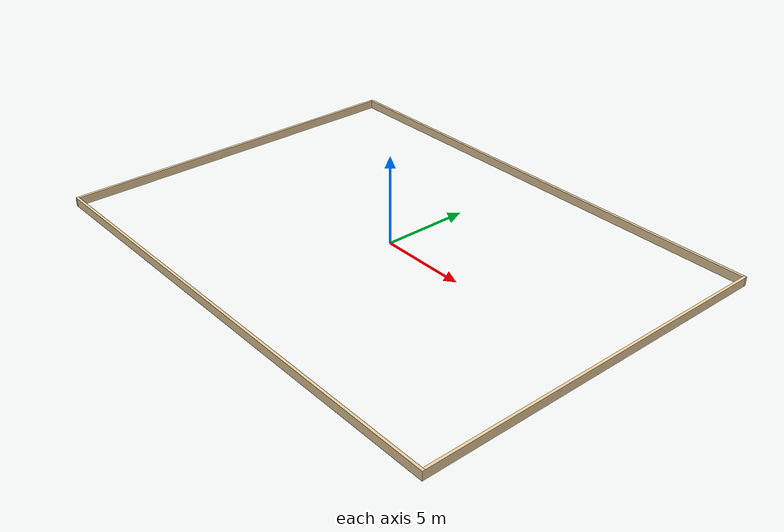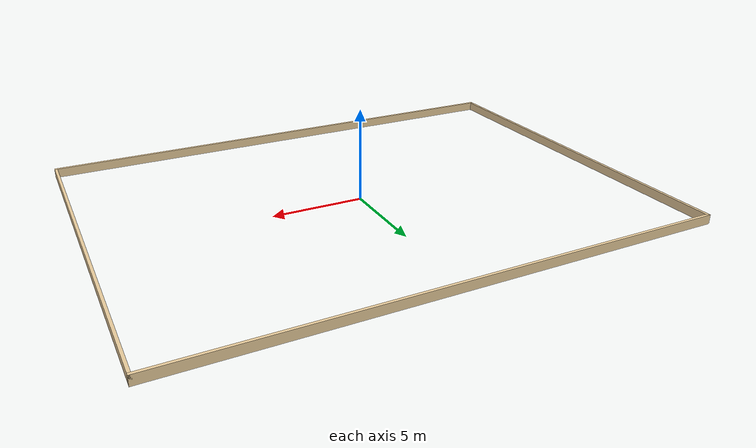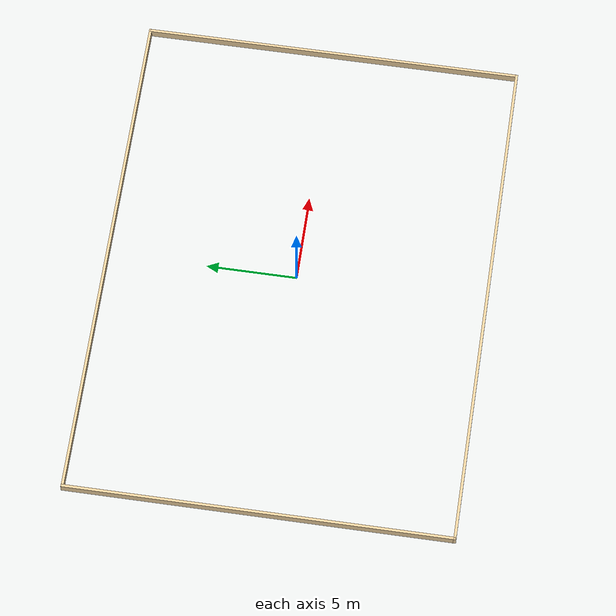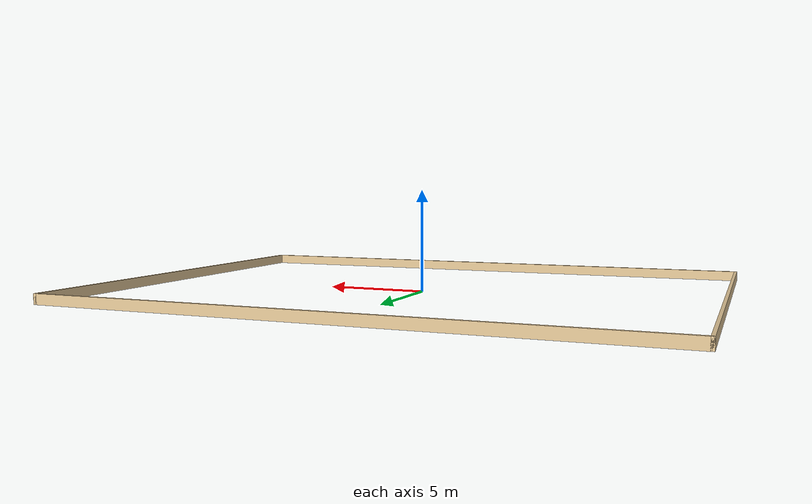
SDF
<?xml version='1.0'?>
<sdf version='1.6'>
  <model name='indoor_boundary'>
    <pose frame=''>0 0 0 0 -0 0</pose>
    <link name='Wall_10'>
      <collision name='Wall_10_Collision'>
        <geometry>
          <box>
            <size>28.65 0.15 0.5</size>
          </box>
        </geometry>
        <pose frame=''>0 0 0.25 0 -0 0</pose>
      </collision>
      <visual name='Wall_10_Visual'>
        <pose frame=''>0 0 0.25 0 -0 0</pose>
        <geometry>
          <box>
            <size>28.65 0.15 0.5</size>
          </box>
        </geometry>
        <material>
          <script>
            <uri>file://media/materials/scripts/gazebo.material</uri>
            <name>Gazebo/Grey</name>
          </script>
          <ambient>0.921569 0.807843 0.615686 1</ambient>
        </material>
        <meta>
          <layer>0</layer>
        </meta>
      </visual>
      <pose frame=''>0 -10.5 0 0 -0 3.14159</pose>
    </link>
    <link name='Wall_11'>
      <collision name='Wall_11_Collision'>
        <geometry>
          <box>
            <size>21.15 0.15 0.5</size>
          </box>
        </geometry>
        <pose frame=''>0 0 0.25 0 -0 0</pose>
      </collision>
      <visual name='Wall_11_Visual'>
        <pose frame=''>0 0 0.25 0 -0 0</pose>
        <geometry>
          <box>
            <size>21.15 0.15 0.5</size>
          </box>
        </geometry>
        <material>
          <script>
            <uri>file://media/materials/scripts/gazebo.material</uri>
            <name>Gazebo/Grey</name>
          </script>
          <ambient>0.921569 0.807843 0.615686 1</ambient>
        </material>
        <meta>
          <layer>0</layer>
        </meta>
      </visual>
      <pose frame=''>-14.25 0 0 0 -0 1.5708</pose>
    </link>
    <link name='Wall_12'>
      <collision name='Wall_12_Collision'>
        <geometry>
          <box>
            <size>28.65 0.15 0.5</size>
          </box>
        </geometry>
        <pose frame=''>0 0 0.25 0 -0 0</pose>
      </collision>
      <visual name='Wall_12_Visual'>
        <pose frame=''>0 0 0.25 0 -0 0</pose>
        <geometry>
          <box>
            <size>28.65 0.15 0.5</size>
          </box>
        </geometry>
        <material>
          <script>
            <uri>file://media/materials/scripts/gazebo.material</uri>
            <name>Gazebo/Grey</name>
          </script>
          <ambient>0.921569 0.807843 0.615686 1</ambient>
        </material>
        <meta>
          <layer>0</layer>
        </meta>
      </visual>
      <pose frame=''>0 10.5 0 0 -0 0</pose>
    </link>
    <link name='Wall_8'>
      <collision name='Wall_8_Collision'>
        <geometry>
          <box>
            <size>21.15 0.15 0.5</size>
          </box>
        </geometry>
        <pose frame=''>0 0 0.25 0 -0 0</pose>
      </collision>
      <visual name='Wall_8_Visual'>
        <pose frame=''>0 0 0.25 0 -0 0</pose>
        <geometry>
          <box>
            <size>21.15 0.15 0.5</size>
          </box>
        </geometry>
        <material>
          <script>
            <uri>file://media/materials/scripts/gazebo.material</uri>
            <name>Gazebo/Grey</name>
          </script>
          <ambient>0.921569 0.807843 0.615686 1</ambient>
        </material>
        <meta>
          <layer>0</layer>
        </meta>
      </visual>
      <pose frame=''>14.25 0 0 0 -0 1.5708</pose>
    </link>
    <static>1</static>
  </model>
</sdf>
